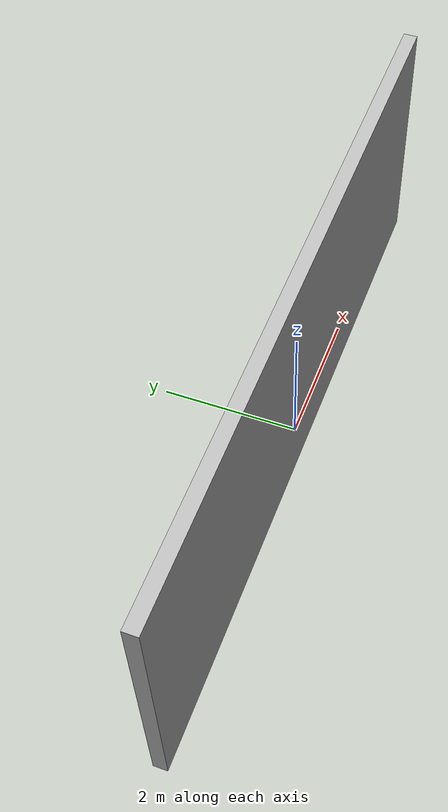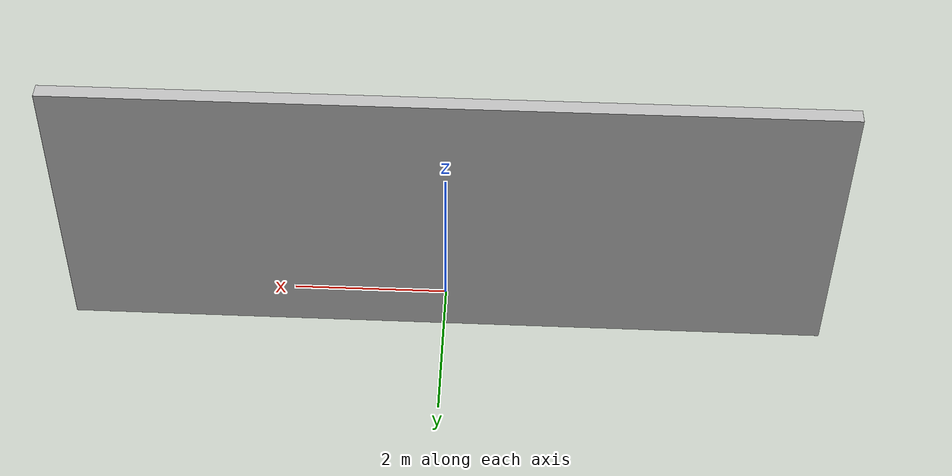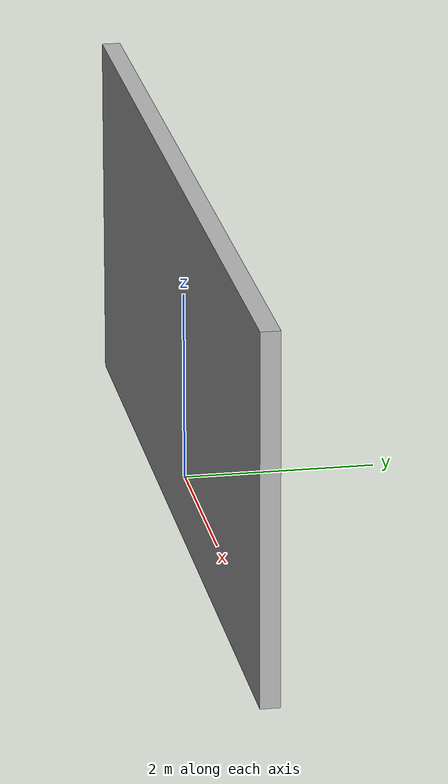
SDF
<?xml version="1.0" ?>
<sdf version="1.4">
    <model name="cutout_wall">
        <static>true</static>
        <link name="link">
            <pose>0 0 1.4 0 0 0</pose>
            <collision name="collision">
                <geometry>
                    <box>
                        <size>10.0 0.2 3.8</size>
                    </box>
                </geometry>
                <surface>
                    <contact>
                        <collide_without_contact>true</collide_without_contact>
                        <collide_without_contact_bitmask>2</collide_without_contact_bitmask>
                    </contact>
                </surface>
            </collision>
            <visual name="visual">
                <cast_shadows>false</cast_shadows>
                <geometry>
                    <box>
                        <size>10.0 0.2 3.8</size>
                    </box>
                </geometry>
                <material>
                    <script>
                        <uri>https://fuel.gazebosim.org/1.0/openrobotics/models/cutout wall/2/files/materials/scripts</uri>
                        <uri>https://fuel.gazebosim.org/1.0/openrobotics/models/cutout wall/2/files/materials/textures</uri>
                        <name>drc_practice/cutout_wall</name>
                    </script>
                </material>
            </visual>
            <sensor name="mud_contact" type="contact">
                <always_on>true</always_on>
                <update_rate>1000</update_rate>
                <contact>
                    <collision>collision</collision>
                </contact>
            </sensor>
        </link>
        <plugin name="gazebo_mud" filename="libMudPlugin.so">
            <contact_sensor_name>link/mud_contact</contact_sensor_name>
            <stiffness>0.0</stiffness>
            <damping>40.0</damping>
            <contact_surface_bitmask>2</contact_surface_bitmask>
            <link_name>drill::link</link_name>
        </plugin>
    </model>
</sdf>
